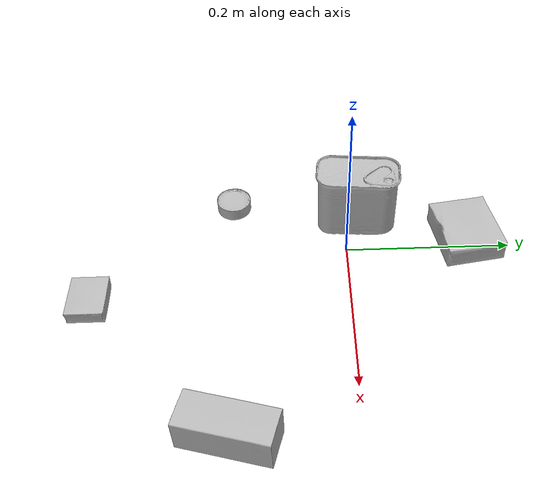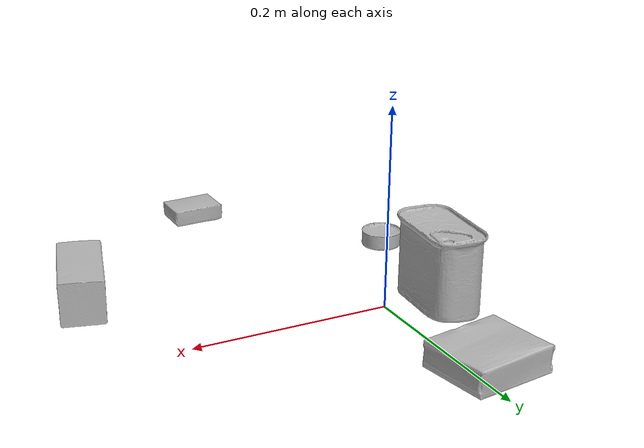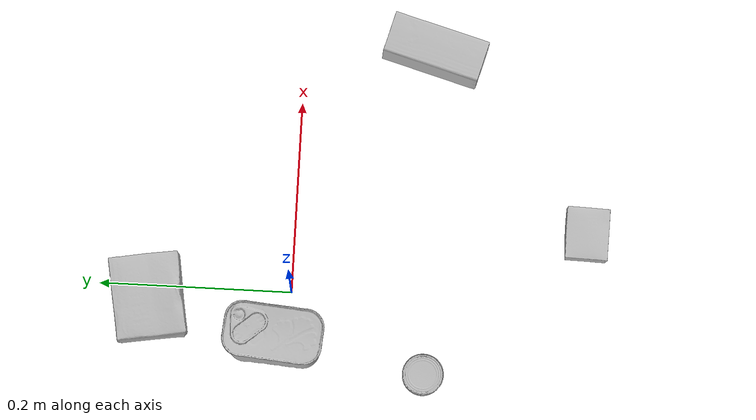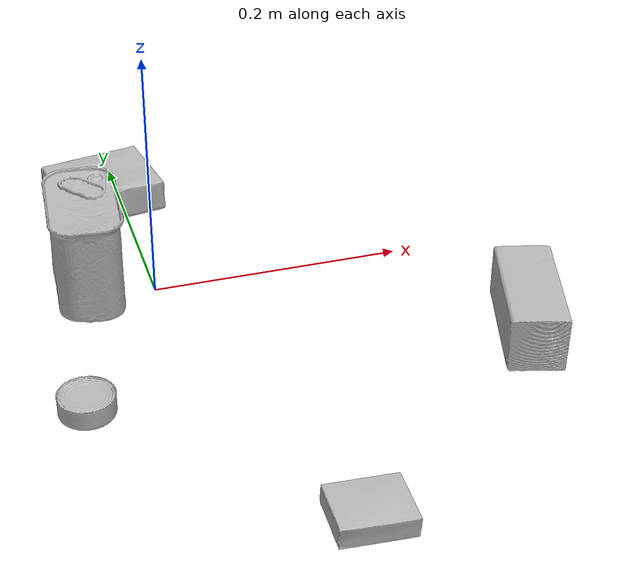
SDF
<sdf version="1.4">
  <world name="default">
    <light name="light1" type="point">
      <pose>0 0 1 0 0 0</pose>
      <diffuse>3 3 3 1</diffuse>
      <specular>3 3 3 1</specular>
    </light>
    <light name="light2" type="point">
      <pose>0 0.5 2 0 0 0</pose>
      <diffuse>1 1 1 1</diffuse>
      <specular>1 1 1 1</specular>
    </light>
    <light name="light3" type="point">
      <pose>0 0.5 2 0 0 0</pose>
      <diffuse>3 3 3 1</diffuse>
      <specular>3 3 3 1</specular>
    </light>
    <scene>
      <ambient>0.7 0.7 0.7</ambient>
    </scene>
    <model name="box1">
      <link name="link_box1">
        <collision name="default">
          <geometry>
            <mesh>
              <uri>model://pudding_box/collision_meshes/collision.obj</uri>
              <scale>0.5 0.5 0.5</scale>
            </mesh>
          </geometry>
          <surface>
            <friction>
              <ode>
                <mu>0.5</mu>
                <mu2>0.5</mu2>
              </ode>
            </friction>
          <contact>
        <ode>
            <max_vel>0</max_vel>
            <min_depth>0.0001</min_depth>
            <kp>1e8</kp>
        </ode>
    </contact></surface>
        </collision>
        <visual name="default">
          <geometry>
            <mesh>
              <uri>model://pudding_box/visual_meshes/visual.dae</uri>
              <scale>0.5 0.5 0.5</scale>
            </mesh>
          </geometry>
        </visual>
        <inertial>
          <mass>0.037190694361925125</mass>
          <pose>0.00024474109522998333 0.00040339428232982755 -0.0002594413817860186 0.005213101817299687 -0.0066037968510836995 0.02007982330137587</pose>
          <inertia>
            <ixx>1.0510541e-05</ixx>
            <iyy>7.071568e-06</iyy>
            <izz>1.552156e-05</izz>
            <ixy>0</ixy>
            <ixz>0</ixz>
            <iyz>0</iyz>
          </inertia>
        </inertial>
      </link>
      <pose>0.07662949711084366 -0.3022999167442322 0.009862905368208885 0.022348472050383195 -0.011391718782856875 1.5435888798792916</pose>
    </model>
    <model name="box2">
      <link name="link_box2">
        <collision name="default">
          <geometry>
            <mesh>
              <uri>model://gelatin_box/collision_meshes/collision.obj</uri>
              <scale>1.0 1.0 1.0</scale>
            </mesh>
          </geometry>
          <surface>
            <friction>
              <ode>
                <mu>0.5</mu>
                <mu2>0.5</mu2>
              </ode>
            </friction>
          <contact>
        <ode>
            <max_vel>0</max_vel>
            <min_depth>0.0001</min_depth>
            <kp>1e8</kp>
        </ode>
    </contact></surface>
        </collision>
        <visual name="default">
          <geometry>
            <mesh>
              <uri>model://gelatin_box/visual_meshes/visual.dae</uri>
              <scale>1.0 1.0 1.0</scale>
            </mesh>
          </geometry>
        </visual>
        <inertial>
          <mass>0.11744645982980728</mass>
          <pose>0.0004319618456065655 0.00011156871914863586 -0.0003640321083366871 -0.001050371865231848 -0.004755818223747806 0.01644056319675078</pose>
          <inertia>
            <ixx>8.290762e-05</ixx>
            <iyy>5.9220478e-05</iyy>
            <izz>0.00012620387</izz>
            <ixy>0</ixy>
            <ixz>0</ixz>
            <iyz>0</iyz>
          </inertia>
        </inertial>
      </link>
      <pose>-0.013812316581606865 0.1479959636926651 0.01516831573098898 0.005597134499215454 -0.007304179805794605 -1.4138902302092888</pose>
    </model>
    <model name="box3">
      <link name="link_box3">
        <collision name="default">
          <geometry>
            <mesh>
              <uri>model://wood_block/collision_meshes/collision.obj</uri>
              <scale>0.5 0.5 0.5</scale>
            </mesh>
          </geometry>
          <surface>
            <friction>
              <ode>
                <mu>0.5</mu>
                <mu2>0.5</mu2>
              </ode>
            </friction>
          <contact>
        <ode>
            <max_vel>0</max_vel>
            <min_depth>0.0001</min_depth>
            <kp>1e8</kp>
        </ode>
    </contact></surface>
        </collision>
        <visual name="default">
          <geometry>
            <mesh>
              <uri>model://wood_block/visual_meshes/visual.dae</uri>
              <scale>0.5 0.5 0.5</scale>
            </mesh>
          </geometry>
        </visual>
        <inertial>
          <mass>0.2439567744731903</mass>
          <pose>-2.906657982748584e-06 -0.00028540476341731846 0.00013204292918089777 -0.05220841280222248 -0.00519269633387802 -0.006861376952924709</pose>
          <inertia>
            <ixx>8.161277e-05</ixx>
            <iyy>0.00025781477</iyy>
            <izz>0.0002568504</izz>
            <ixy>0</ixy>
            <ixz>0</ixz>
            <iyz>0</iyz>
          </inertia>
        </inertial>
      </link>
      <pose>0.25990185141563416 -0.13595156371593475 0.022629259154200554 -0.005208675829581325 0.005718722154309512 -1.8423892684714758</pose>
    </model>
    <model name="can1">
      <link name="link_can1">
        <collision name="default">
          <geometry>
            <mesh>
              <uri>model://tuna_fish_can/collision_meshes/collision.obj</uri>
              <scale>0.5 0.5 0.5</scale>
            </mesh>
          </geometry>
          <surface>
            <friction>
              <ode>
                <mu>0.5</mu>
                <mu2>0.5</mu2>
              </ode>
            </friction>
          <contact>
        <ode>
            <max_vel>0</max_vel>
            <min_depth>0.0001</min_depth>
            <kp>1e8</kp>
        </ode>
    </contact></surface>
        </collision>
        <visual name="default">
          <geometry>
            <mesh>
              <uri>model://tuna_fish_can/visual_meshes/visual.dae</uri>
              <scale>0.5 0.5 0.5</scale>
            </mesh>
          </geometry>
        </visual>
        <inertial>
          <mass>0.02880808152258396</mass>
          <pose>-2.036173827946186e-05 -7.256211574713234e-06 -0.0005269025568850338 -0.0017944794030227106 0.00017162104037918286 0.24054189207372795</pose>
          <inertia>
            <ixx>3.894896e-06</ixx>
            <iyy>3.878662e-06</iyy>
            <izz>6.6647226e-06</izz>
            <ixy>0</ixy>
            <ixz>0</ixz>
            <iyz>0</iyz>
          </inertia>
        </inertial>
      </link>
      <pose>-0.07844047993421555 -0.13925178349018097 0.008520003408193588 6.722042012003196e-09 9.217637441089231e-09 -1.5223251120852932</pose>
    </model>
    <model name="can2">
      <link name="link_can2">
        <collision name="default">
          <geometry>
            <mesh>
              <uri>model://potted_meat_can/collision_meshes/collision.obj</uri>
              <scale>1.0 1.0 1.0</scale>
            </mesh>
          </geometry>
          <surface>
            <friction>
              <ode>
                <mu>0.5</mu>
                <mu2>0.5</mu2>
              </ode>
            </friction>
          <contact>
        <ode>
            <max_vel>0</max_vel>
            <min_depth>0.0001</min_depth>
            <kp>1e8</kp>
        </ode>
    </contact></surface>
        </collision>
        <visual name="default">
          <geometry>
            <mesh>
              <uri>model://potted_meat_can/visual_meshes/visual.dae</uri>
              <scale>1.0 1.0 1.0</scale>
            </mesh>
          </geometry>
        </visual>
        <inertial>
          <mass>0.21485549211502075</mass>
          <pose>0.00022888135572429746 -5.989110650261864e-05 -0.0006367442547343671 -0.028093358319385277 -0.007232601893117688 0.015406275523281094</pose>
          <inertia>
            <ixx>0.00027638907</ixx>
            <iyy>0.00016792737</iyy>
            <izz>0.00020102048</izz>
            <ixy>0</ixy>
            <ixz>0</ixz>
            <iyz>0</iyz>
          </inertia>
        </inertial>
      </link>
      <pose>-0.049920376390218735 0.01510119903832674 0.04212799668312073 -4.8772836448127924e-09 -4.966959909249801e-07 3.048366738841462</pose>
    </model>
  <physics type="ode">
      <max_contacts>50</max_contacts>
      <ode>
        <solver>
          <type>quick</type>
          <iters>75</iters>
        </solver>
        <constraints>
          <contact_max_correcting_vel>0</contact_max_correcting_vel>
          <contact_surface_layer>0</contact_surface_layer>
        </constraints>
      </ode>
    </physics></world>
</sdf>
